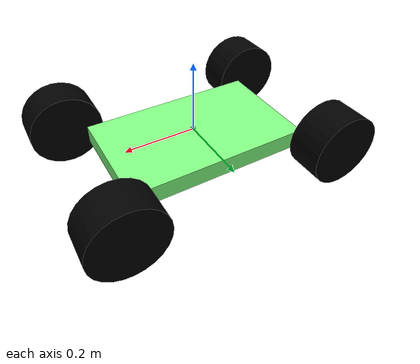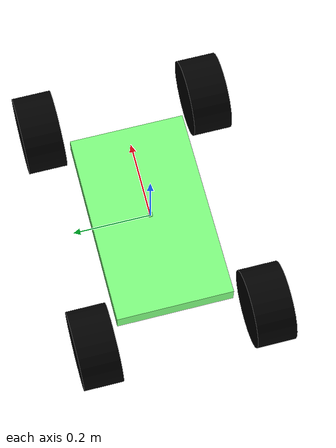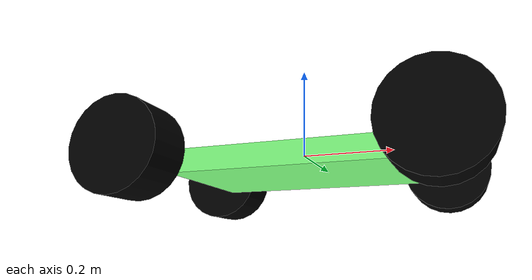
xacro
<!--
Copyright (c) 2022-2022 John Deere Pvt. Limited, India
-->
<?xml version="1.0"?>

<robot name="em_3905" xmlns:xacro="http://www.ros.org/wiki/xacro">
  <!-- Degree-to-radian conversions -->
  <xacro:property name="degrees_45" value="${pi/4}"/>
  <xacro:property name="degrees_90" value="${pi/2}"/>

  <!-- chassis_length is measured along the x axis, chassis_width
       along the y axis, and chassis_height along the z axis. -->
  <xacro:property name="chassis_length" value="0.5"/>
  <xacro:property name="chassis_width" value="0.3"/>
  <xacro:property name="chassis_height" value="0.05"/>
  <xacro:property name="chassis_mass" value="4"/>

  <xacro:property name="hub_dia" value="0.15"/>
  <xacro:property name="tire_dia" value="0.2"/>
  <xacro:property name="tire_width" value="0.1"/>
  <xacro:property name="hex_hub_depth" value="0.02"/>
  <xacro:property name="wheel_mass" value="0.5"/>

  <xacro:property name="wheelbase" value="0.6"/>
  <xacro:property name="hex_hub_dist" value="0.5"/>
  <xacro:property name="axle_length" value="0.03"/>
  <xacro:property name="wheel_travel" value="0.1"/>
  <xacro:property name="shock_z_offset" value="0.06"/>

  <xacro:property name="shock_eff_limit" value="12"/>
  <xacro:property name="shock_vel_limit" value="1000"/>

  <xacro:property name="axle_eff_limit" value="5"/>
  <xacro:property name="axle_vel_limit" value="250"/>

  <!-- These constants are used to simulate a servo operated at
       6 V. servo_stall_torque is measured in N m. servo_no_load_speed is
       measured in rad/s. -->
  <xacro:property name="servo_stall_torque" value="0.5"/>
  <xacro:property name="servo_no_load_speed" value="4.5"/>

  <material name="chassis_mat">
    <color rgba="0.5 1 0.5 1"/>
  </material>
  <material name="tire_mat">
    <color rgba="0 0 0 1"/>
  </material>

  <!-- Null inertial element. This is needed to make the model work with
       Gazebo. -->
  <xacro:macro name="null_inertial">
    <inertial>
      <mass value="0.001"/>
      <inertia ixx="0.001" ixy="0" ixz="0" iyy="0.001" iyz="0" izz="0.001"/>
    </inertial>
  </xacro:macro>

  <!-- Inertia of a solid cuboid. Width is measured along the x axis, depth
       along the y axis, and height along the z axis. -->
  <xacro:macro name="solid_cuboid_inertial"
               params="width depth height mass *origin">
    <inertial>
      <xacro:insert_block name="origin"/>
      <mass value="${mass}"/>
      <inertia ixx="${mass * (depth * depth + height * height) / 12}"
               ixy="0" ixz="0"
               iyy="${mass * (width * width + height * height) / 12}"
               iyz="0"
               izz="${mass * (width * width + depth * depth) / 12}"/>
    </inertial>
  </xacro:macro>

  <xacro:macro name="thick_walled_tube_inertial"
               params="inner_rad outer_rad height mass">
    <inertial>
      <mass value="${mass}"/>
      <inertia ixx="${(1 / 12) * mass * (3 * (inner_rad * inner_rad +
                    outer_rad * outer_rad) + height * height)}"
               ixy="0" ixz="0"
               iyy="${(1 / 12) * mass * (3 * (inner_rad * inner_rad +
                    outer_rad * outer_rad) + height * height)}"
               iyz="0"
               izz="${mass * (inner_rad * inner_rad +
                    outer_rad * outer_rad) / 2}"/>
    </inertial>
  </xacro:macro>

  <!-- Shock absorber -->
  <xacro:macro name="shock"
               params="lr_prefix fr_prefix lr_reflect fr_reflect child">
    <joint name="${lr_prefix}_${fr_prefix}_shock" type="prismatic">
      <parent link="chassis"/>
      <child link="${child}"/>

      <origin xyz="${fr_reflect * wheelbase / 2}
                   ${lr_reflect * ((hex_hub_dist / 2) - axle_length)}
                   ${(wheel_travel / 2) - shock_z_offset}"/>
      <axis xyz="0 0 -1"/>
      <limit lower="${-wheel_travel / 2}" upper="${wheel_travel / 2}"
             effort="${shock_eff_limit}" velocity="${shock_vel_limit}"/>
    </joint>
  </xacro:macro>

  <!-- The "wheel" macro defines an axle carrier, axle, and wheel. -->
  <xacro:macro name="wheel" params="lr_prefix fr_prefix lr_reflect">
    <link name="${lr_prefix}_${fr_prefix}_axle_carrier">
      <xacro:null_inertial/>
    </link>

    <!-- The left and right axles have the same axis so that identical
         rotation values cause the wheels to rotate in the same direction. -->
    <joint name="${lr_prefix}_${fr_prefix}_axle" type="continuous">
      <parent link="${lr_prefix}_${fr_prefix}_axle_carrier"/>
      <child link="${lr_prefix}_${fr_prefix}_wheel"/>
      <origin rpy="${degrees_90} 0 0"/>
      <axis xyz="0 0 -1"/>
      <limit effort="${axle_eff_limit}" velocity="${axle_vel_limit}"/>
    </joint>

    <link name="${lr_prefix}_${fr_prefix}_wheel">
      <visual>
        <origin xyz="0
                     ${lr_reflect * (axle_length - (tire_width /
                     2 - hex_hub_depth))}
                     0"/>
        <geometry>
          <cylinder radius="${tire_dia / 2}" length="${tire_width}"/>
        </geometry>
        <material name="tire_mat"/>
      </visual>

      <collision>
        <origin xyz="0
                     ${lr_reflect * (axle_length - (tire_width /
                     2 - hex_hub_depth))}
                     0"/>
        <geometry>
          <cylinder radius="${tire_dia / 2}" length="${tire_width}"/>
        </geometry>
      </collision>

      <xacro:thick_walled_tube_inertial
          inner_rad="${hub_dia / 2}" outer_rad="${tire_dia / 2}"
          height="${tire_width}" mass="${wheel_mass}"/>
    </link>

    <gazebo reference="${lr_prefix}_${fr_prefix}_wheel">
      <material>Gazebo/Black</material>
    </gazebo>
  </xacro:macro>

  <!-- Front wheel -->
  <xacro:macro name="front_wheel"
               params="lr_prefix fr_prefix lr_reflect fr_reflect">
    <xacro:shock lr_prefix="${lr_prefix}" fr_prefix="${fr_prefix}"
                 lr_reflect="${lr_reflect}" fr_reflect="${fr_reflect}"
                 child="${lr_prefix}_steering_link"/>

    <link name="${lr_prefix}_steering_link">
      <xacro:null_inertial/>
    </link>

    <joint name="${lr_prefix}_steering_joint" type="revolute">
      <parent link="${lr_prefix}_steering_link"/>
      <child link="${lr_prefix}_${fr_prefix}_axle_carrier"/>
      <axis xyz="0 0 1"/>
      <limit lower="${-degrees_45}" upper="${degrees_45}"
             effort="${servo_stall_torque}" velocity="${servo_no_load_speed}"/>
    </joint>

    <xacro:wheel lr_prefix="${lr_prefix}" fr_prefix="${fr_prefix}"
                 lr_reflect="${lr_reflect}"/>
  </xacro:macro>

  <!-- Rear wheel -->
  <xacro:macro name="rear_wheel"
               params="lr_prefix fr_prefix lr_reflect fr_reflect">
    <xacro:shock lr_prefix="${lr_prefix}" fr_prefix="${fr_prefix}"
                 lr_reflect="${lr_reflect}" fr_reflect="${fr_reflect}"
                 child="${lr_prefix}_${fr_prefix}_axle_carrier"/>
    <xacro:wheel lr_prefix="${lr_prefix}" fr_prefix="${fr_prefix}"
                 lr_reflect="${lr_reflect}"/>
  </xacro:macro>

  <!-- base_link must have geometry so that its axes can be displayed in
       rviz. -->
  <link name="base_link">
    <visual>
      <geometry>
        <box size="0.01 0.01 0.01"/>
      </geometry>
      <material name="chassis_mat"/>
    </visual>
  </link>
  <gazebo reference="base_link">
    <material>Gazebo/Grey</material>
  </gazebo>

  <!-- Chassis -->
  <link name="chassis">
    <visual>
      <origin xyz="0 0 ${-chassis_height / 2}"/>
      <geometry>
        <box size="${chassis_length} ${chassis_width} ${chassis_height}"/>
      </geometry>
      <material name="chassis_mat"/>
    </visual>

    <collision>
      <origin xyz="0 0 ${-chassis_height / 2}"/>
      <geometry>
        <box size="${chassis_length} ${chassis_width} ${chassis_height}"/>
      </geometry>
    </collision>

    <xacro:solid_cuboid_inertial
        width="${chassis_length}" depth="${chassis_width}"
        height="${chassis_height}" mass="${chassis_mass}">
      <origin xyz="0 0 ${-chassis_height / 2}"/>
    </xacro:solid_cuboid_inertial>
  </link>
  <gazebo reference="chassis">
    <material>Gazebo/Grey</material>
  </gazebo>

  <joint name="base_link_to_chassis" type="fixed">
    <parent link="base_link"/>
    <child link="chassis"/>
  </joint>

  <!-- Wheels -->
  <xacro:front_wheel lr_prefix="left" fr_prefix="front"
                     lr_reflect="1" fr_reflect="1"/>
  <xacro:front_wheel lr_prefix="right" fr_prefix="front"
                     lr_reflect="-1" fr_reflect="1"/>
  <xacro:rear_wheel lr_prefix="left" fr_prefix="rear"
                    lr_reflect="1" fr_reflect="-1"/>
  <xacro:rear_wheel lr_prefix="right" fr_prefix="rear"
                    lr_reflect="-1" fr_reflect="-1"/>

  <gazebo>
    <plugin name="gazebo_ros_control" filename="libgazebo_ros_control.so"/>
  </gazebo>
</robot>
